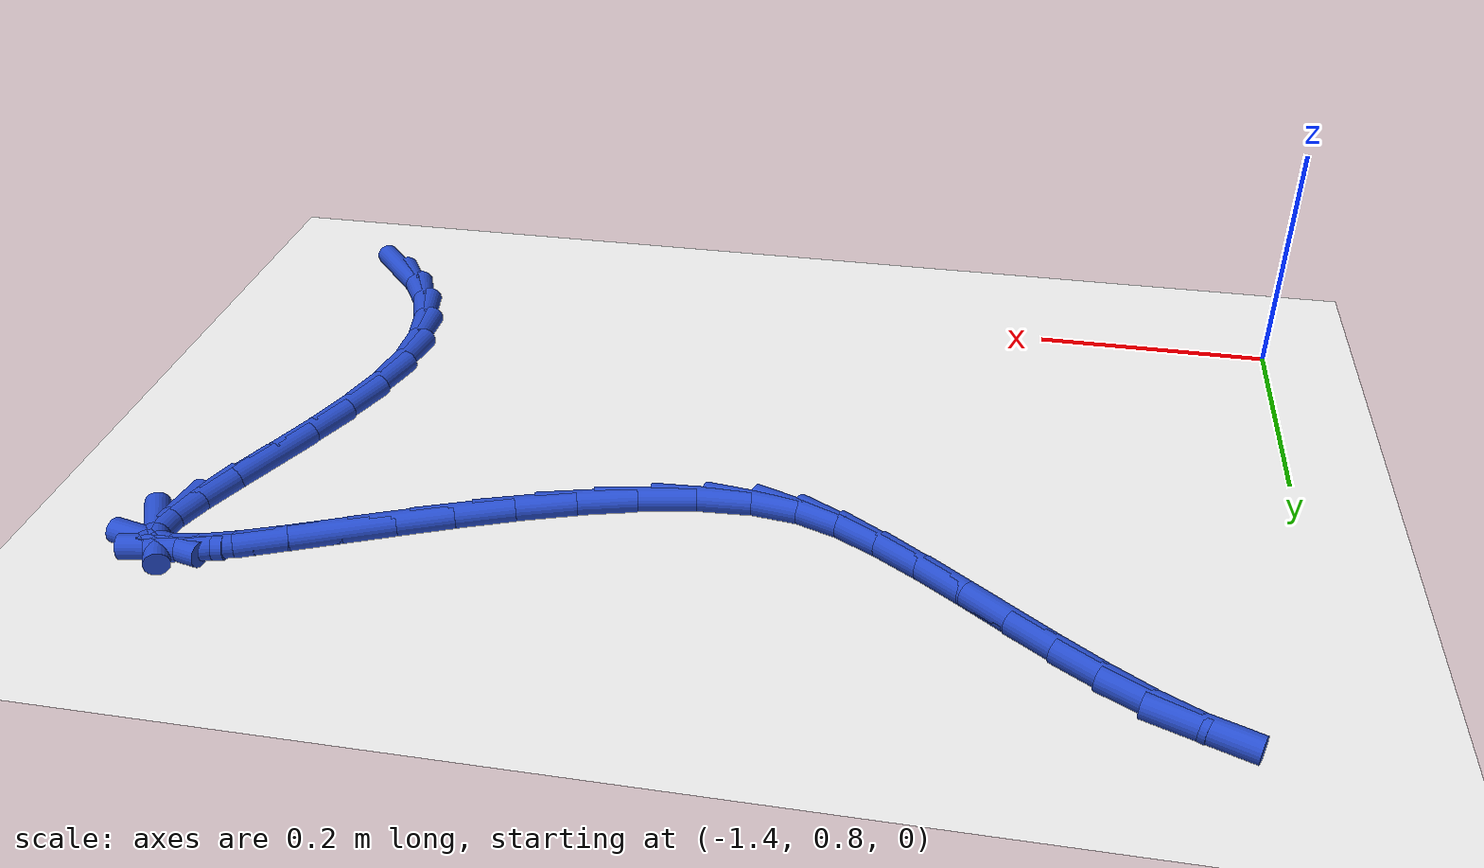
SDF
<sdf version="1.6">
 <world name="default">
  <model name="ground_plane">
   <static>1</static>
   <link name="link">
    <collision name="collision">
     <geometry><plane><normal>0 0 1</normal><size>100 100</size></plane></geometry>
     <surface><friction><ode><mu>100</mu><mu2>50</mu2></ode></friction></surface>
    </collision>
    <visual name="visual">
     <cast_shadows>0</cast_shadows>
     <geometry><plane><normal>0 0 1</normal><size>100 100</size></plane></geometry>
     <material>
      <script><uri>file://media/materials/scripts/gazebo.material</uri><name>Gazebo/WhiteGlow</name></script>
     </material>
    </visual>
   </link>
  </model>
  <model name="line">
   <link name="link_31">
    <pose>-0.5691640479718779 0.7919125182827872 0.01 0 1.57 -0.8287938160876648</pose>
    <collision name="collision">
     <geometry><cylinder><radius>0.01</radius><length>0.08</length></cylinder></geometry>
    </collision>
    <visual name="visual">
     <material>
      <script><name>Gazebo/Blue</name><uri>file://media/materials/scripts/gazebo.material</uri></script>
     </material>
     <geometry><cylinder><radius>0.01</radius><length>0.08</length></cylinder></geometry>
    </visual>
   </link>
   <link name="link_32">
    <pose>-0.5921887021559505 0.8170275373524093 0.01 0 1.57 -1.008055546454614</pose>
    <collision name="collision">
     <geometry><cylinder><radius>0.01</radius><length>0.08</length></cylinder></geometry>
    </collision>
    <visual name="visual">
     <material>
      <script><name>Gazebo/Blue</name><uri>file://media/materials/scripts/gazebo.material</uri></script>
     </material>
     <geometry><cylinder><radius>0.01</radius><length>0.08</length></cylinder></geometry>
    </visual>
   </link>
   <link name="link_33">
    <pose>-0.6106379929205288 0.8462761823557295 0.01 0 1.57 -1.190800888467741</pose>
    <collision name="collision">
     <geometry><cylinder><radius>0.01</radius><length>0.08</length></cylinder></geometry>
    </collision>
    <visual name="visual">
     <material>
      <script><name>Gazebo/Blue</name><uri>file://media/materials/scripts/gazebo.material</uri></script>
     </material>
     <geometry><cylinder><radius>0.01</radius><length>0.08</length></cylinder></geometry>
    </visual>
   </link>
   <link name="link_34">
    <pose>-0.6238168514182505 0.8792722095693919 0.01 0 1.57 -1.3745162825788582</pose>
    <collision name="collision">
     <geometry><cylinder><radius>0.01</radius><length>0.08</length></cylinder></geometry>
    </collision>
    <visual name="visual">
     <material>
      <script><name>Gazebo/Blue</name><uri>file://media/materials/scripts/gazebo.material</uri></script>
     </material>
     <geometry><cylinder><radius>0.01</radius><length>0.08</length></cylinder></geometry>
    </visual>
   </link>
   <link name="link_35">
    <pose>-0.6310119494336793 0.9154575525569977 0.01 0 1.57 -1.5579672254800017</pose>
    <collision name="collision">
     <geometry><cylinder><radius>0.01</radius><length>0.08</length></cylinder></geometry>
    </collision>
    <visual name="visual">
     <material>
      <script><name>Gazebo/Blue</name><uri>file://media/materials/scripts/gazebo.material</uri></script>
     </material>
     <geometry><cylinder><radius>0.01</radius><length>0.08</length></cylinder></geometry>
    </visual>
   </link>
   <link name="link_36">
    <pose>-0.6315099587513782 0.9542741448821481 0.01 0 1.57 1.411901880810581</pose>
    <collision name="collision">
     <geometry><cylinder><radius>0.01</radius><length>0.08</length></cylinder></geometry>
    </collision>
    <visual name="visual">
     <material>
      <script><name>Gazebo/Blue</name><uri>file://media/materials/scripts/gazebo.material</uri></script>
     </material>
     <geometry><cylinder><radius>0.01</radius><length>0.08</length></cylinder></geometry>
    </visual>
   </link>
   <link name="link_37">
    <pose>-0.6249741604738228 0.9950603496126849 0.01 0 1.57 1.2879114870810962</pose>
    <collision name="collision">
     <geometry><cylinder><radius>0.01</radius><length>0.08</length></cylinder></geometry>
    </collision>
    <visual name="visual">
     <material>
      <script><name>Gazebo/Blue</name><uri>file://media/materials/scripts/gazebo.material</uri></script>
     </material>
     <geometry><cylinder><radius>0.01</radius><length>0.08</length></cylinder></geometry>
    </visual>
   </link>
   <link name="link_38">
    <pose>-0.6128833415887832 1.0366552515573897 0.01 0 1.57 1.207531063588702</pose>
    <collision name="collision">
     <geometry><cylinder><radius>0.01</radius><length>0.08</length></cylinder></geometry>
    </collision>
    <visual name="visual">
     <material>
      <script><name>Gazebo/Blue</name><uri>file://media/materials/scripts/gazebo.material</uri></script>
     </material>
     <geometry><cylinder><radius>0.01</radius><length>0.08</length></cylinder></geometry>
    </visual>
   </link>
   <link name="link_39">
    <pose>-0.5972626575549644 1.0777476799399857 0.01 0 1.57 1.1596509893311557</pose>
    <collision name="collision">
     <geometry><cylinder><radius>0.01</radius><length>0.08</length></cylinder></geometry>
    </collision>
    <visual name="visual">
     <material>
      <script><name>Gazebo/Blue</name><uri>file://media/materials/scripts/gazebo.material</uri></script>
     </material>
     <geometry><cylinder><radius>0.01</radius><length>0.08</length></cylinder></geometry>
    </visual>
   </link>
   <link name="link_40">
    <pose>-0.5801373729669529 1.117026433970977 0.01 0 1.57 1.1402550407716003</pose>
    <collision name="collision">
     <geometry><cylinder><radius>0.01</radius><length>0.08</length></cylinder></geometry>
    </collision>
    <visual name="visual">
     <material>
      <script><name>Gazebo/Blue</name><uri>file://media/materials/scripts/gazebo.material</uri></script>
     </material>
     <geometry><cylinder><radius>0.01</radius><length>0.08</length></cylinder></geometry>
    </visual>
   </link>
   <link name="link_41">
    <pose>-0.5635327524193348 1.1531803128608682 0.01 0 1.57 1.1535757710899832</pose>
    <collision name="collision">
     <geometry><cylinder><radius>0.01</radius><length>0.08</length></cylinder></geometry>
    </collision>
    <visual name="visual">
     <material>
      <script><name>Gazebo/Blue</name><uri>file://media/materials/scripts/gazebo.material</uri></script>
     </material>
     <geometry><cylinder><radius>0.01</radius><length>0.08</length></cylinder></geometry>
    </visual>
   </link>
   <link name="link_42">
    <pose>-0.5494740605066963 1.1848981158201646 0.01 0 1.57 1.2205409538286702</pose>
    <collision name="collision">
     <geometry><cylinder><radius>0.01</radius><length>0.08</length></cylinder></geometry>
    </collision>
    <visual name="visual">
     <material>
      <script><name>Gazebo/Blue</name><uri>file://media/materials/scripts/gazebo.material</uri></script>
     </material>
     <geometry><cylinder><radius>0.01</radius><length>0.08</length></cylinder></geometry>
    </visual>
   </link>
   <link name="link_43">
    <pose>-0.5399865618236241 1.2108686420593706 0.01 0 1.57 1.4191029968428943</pose>
    <collision name="collision">
     <geometry><cylinder><radius>0.01</radius><length>0.08</length></cylinder></geometry>
    </collision>
    <visual name="visual">
     <material>
      <script><name>Gazebo/Blue</name><uri>file://media/materials/scripts/gazebo.material</uri></script>
     </material>
     <geometry><cylinder><radius>0.01</radius><length>0.08</length></cylinder></geometry>
    </visual>
   </link>
   <link name="link_44">
    <pose>-0.5370955209647044 1.229780690788992 0.01 0 1.57 -1.0968200849039615</pose>
    <collision name="collision">
     <geometry><cylinder><radius>0.01</radius><length>0.08</length></cylinder></geometry>
    </collision>
    <visual name="visual">
     <material>
      <script><name>Gazebo/Blue</name><uri>file://media/materials/scripts/gazebo.material</uri></script>
     </material>
     <geometry><cylinder><radius>0.01</radius><length>0.08</length></cylinder></geometry>
    </visual>
   </link>
   <link name="link_45">
    <pose>-0.5426006619674212 1.2405124142446236 0.01 0 1.57 -0.2127903457579623</pose>
    <collision name="collision">
     <geometry><cylinder><radius>0.01</radius><length>0.08</length></cylinder></geometry>
    </collision>
    <visual name="visual">
     <material>
      <script><name>Gazebo/Blue</name><uri>file://media/materials/scripts/gazebo.material</uri></script>
     </material>
     <geometry><cylinder><radius>0.01</radius><length>0.08</length></cylinder></geometry>
    </visual>
   </link>
   <link name="link_46">
    <pose>-0.5564422796925125 1.2435030521402366 0.01 0 1.57 0.16556101545826774</pose>
    <collision name="collision">
     <geometry><cylinder><radius>0.01</radius><length>0.08</length></cylinder></geometry>
    </collision>
    <visual name="visual">
     <material>
      <script><name>Gazebo/Blue</name><uri>file://media/materials/scripts/gazebo.material</uri></script>
     </material>
     <geometry><cylinder><radius>0.01</radius><length>0.08</length></cylinder></geometry>
    </visual>
   </link>
   <link name="link_47">
    <pose>-0.5776454709031361 1.2399602005801604 0.01 0 1.57 0.3109083794844831</pose>
    <collision name="collision">
     <geometry><cylinder><radius>0.01</radius><length>0.08</length></cylinder></geometry>
    </collision>
    <visual name="visual">
     <material>
      <script><name>Gazebo/Blue</name><uri>file://media/materials/scripts/gazebo.material</uri></script>
     </material>
     <geometry><cylinder><radius>0.01</radius><length>0.08</length></cylinder></geometry>
    </visual>
   </link>
   <link name="link_48">
    <pose>-0.6052289418680638 1.231096820821046 0.01 0 1.57 0.3746895385349172</pose>
    <collision name="collision">
     <geometry><cylinder><radius>0.01</radius><length>0.08</length></cylinder></geometry>
    </collision>
    <visual name="visual">
     <material>
      <script><name>Gazebo/Blue</name><uri>file://media/materials/scripts/gazebo.material</uri></script>
     </material>
     <geometry><cylinder><radius>0.01</radius><length>0.08</length></cylinder></geometry>
    </visual>
   </link>
   <link name="link_49">
    <pose>-0.6382113988560678 1.2181258741195429 0.01 0 1.57 0.40120211457559063</pose>
    <collision name="collision">
     <geometry><cylinder><radius>0.01</radius><length>0.08</length></cylinder></geometry>
    </collision>
    <visual name="visual">
     <material>
      <script><name>Gazebo/Blue</name><uri>file://media/materials/scripts/gazebo.material</uri></script>
     </material>
     <geometry><cylinder><radius>0.01</radius><length>0.08</length></cylinder></geometry>
    </visual>
   </link>
   <link name="link_50">
    <pose>-0.6756115481359201 1.2022603217323025 0.01 0 1.57 0.4058393092878728</pose>
    <collision name="collision">
     <geometry><cylinder><radius>0.01</radius><length>0.08</length></cylinder></geometry>
    </collision>
    <visual name="visual">
     <material>
      <script><name>Gazebo/Blue</name><uri>file://media/materials/scripts/gazebo.material</uri></script>
     </material>
     <geometry><cylinder><radius>0.01</radius><length>0.08</length></cylinder></geometry>
    </visual>
   </link>
   <link name="link_51">
    <pose>-0.7164480959763923 1.1847131249159755 0.01 0 1.57 0.39435195863110273</pose>
    <collision name="collision">
     <geometry><cylinder><radius>0.01</radius><length>0.08</length></cylinder></geometry>
    </collision>
    <visual name="visual">
     <material>
      <script><name>Gazebo/Blue</name><uri>file://media/materials/scripts/gazebo.material</uri></script>
     </material>
     <geometry><cylinder><radius>0.01</radius><length>0.08</length></cylinder></geometry>
    </visual>
   </link>
   <link name="link_52">
    <pose>-0.7597397486462572 1.1666972449272117 0.01 0 1.57 0.36822649900544446</pose>
    <collision name="collision">
     <geometry><cylinder><radius>0.01</radius><length>0.08</length></cylinder></geometry>
    </collision>
    <visual name="visual">
     <material>
      <script><name>Gazebo/Blue</name><uri>file://media/materials/scripts/gazebo.material</uri></script>
     </material>
     <geometry><cylinder><radius>0.01</radius><length>0.08</length></cylinder></geometry>
    </visual>
   </link>
   <link name="link_53">
    <pose>-0.8045052124142866 1.1494256430226621 0.01 0 1.57 0.3262850010313419</pose>
    <collision name="collision">
     <geometry><cylinder><radius>0.01</radius><length>0.08</length></cylinder></geometry>
    </collision>
    <visual name="visual">
     <material>
      <script><name>Gazebo/Blue</name><uri>file://media/materials/scripts/gazebo.material</uri></script>
     </material>
     <geometry><cylinder><radius>0.01</radius><length>0.08</length></cylinder></geometry>
    </visual>
   </link>
   <link name="link_54">
    <pose>-0.8497631935492521 1.134111280458978 0.01 0 1.57 0.26488725281545655</pose>
    <collision name="collision">
     <geometry><cylinder><radius>0.01</radius><length>0.08</length></cylinder></geometry>
    </collision>
    <visual name="visual">
     <material>
      <script><name>Gazebo/Blue</name><uri>file://media/materials/scripts/gazebo.material</uri></script>
     </material>
     <geometry><cylinder><radius>0.01</radius><length>0.08</length></cylinder></geometry>
    </visual>
   </link>
   <link name="link_55">
    <pose>-0.8945323983199267 1.121967118492809 0.01 0 1.57 0.17735810649386793</pose>
    <collision name="collision">
     <geometry><cylinder><radius>0.01</radius><length>0.08</length></cylinder></geometry>
    </collision>
    <visual name="visual">
     <material>
      <script><name>Gazebo/Blue</name><uri>file://media/materials/scripts/gazebo.material</uri></script>
     </material>
     <geometry><cylinder><radius>0.01</radius><length>0.08</length></cylinder></geometry>
    </visual>
   </link>
   <link name="link_56">
    <pose>-0.9378315329950817 1.1142061183808063 0.01 0 1.57 0.05294911868341523</pose>
    <collision name="collision">
     <geometry><cylinder><radius>0.01</radius><length>0.08</length></cylinder></geometry>
    </collision>
    <visual name="visual">
     <material>
      <script><name>Gazebo/Blue</name><uri>file://media/materials/scripts/gazebo.material</uri></script>
     </material>
     <geometry><cylinder><radius>0.01</radius><length>0.08</length></cylinder></geometry>
    </visual>
   </link>
   <link name="link_57">
    <pose>-0.9786793038434896 1.1120412413796203 0.01 0 1.57 -0.12349484881316836</pose>
    <collision name="collision">
     <geometry><cylinder><radius>0.01</radius><length>0.08</length></cylinder></geometry>
    </collision>
    <visual name="visual">
     <material>
      <script><name>Gazebo/Blue</name><uri>file://media/materials/scripts/gazebo.material</uri></script>
     </material>
     <geometry><cylinder><radius>0.01</radius><length>0.08</length></cylinder></geometry>
    </visual>
   </link>
   <link name="link_58">
    <pose>-1.0160944171339226 1.116685448745902 0.01 0 1.57 -0.3530125301924481</pose>
    <collision name="collision">
     <geometry><cylinder><radius>0.01</radius><length>0.08</length></cylinder></geometry>
    </collision>
    <visual name="visual">
     <material>
      <script><name>Gazebo/Blue</name><uri>file://media/materials/scripts/gazebo.material</uri></script>
     </material>
     <geometry><cylinder><radius>0.01</radius><length>0.08</length></cylinder></geometry>
    </visual>
   </link>
   <link name="link_59">
    <pose>-1.0495161107083162 1.128999544763535 0.01 0 1.57 -0.5089908944474065</pose>
    <collision name="collision">
     <geometry><cylinder><radius>0.01</radius><length>0.08</length></cylinder></geometry>
    </collision>
    <visual name="visual">
     <material>
      <script><name>Gazebo/Blue</name><uri>file://media/materials/scripts/gazebo.material</uri></script>
     </material>
     <geometry><cylinder><radius>0.01</radius><length>0.08</length></cylinder></geometry>
    </visual>
   </link>
   <link name="link_60">
    <pose>-1.0817292713813056 1.1469756038284262 0.01 0 1.57 -0.5780245154650143</pose>
    <collision name="collision">
     <geometry><cylinder><radius>0.01</radius><length>0.08</length></cylinder></geometry>
    </collision>
    <visual name="visual">
     <material>
      <script><name>Gazebo/Blue</name><uri>file://media/materials/scripts/gazebo.material</uri></script>
     </material>
     <geometry><cylinder><radius>0.01</radius><length>0.08</length></cylinder></geometry>
    </visual>
   </link>
   <link name="link_61">
    <pose>-1.114557933021384 1.168391336665698 0.01 0 1.57 -0.6184746304593443</pose>
    <collision name="collision">
     <geometry><cylinder><radius>0.01</radius><length>0.08</length></cylinder></geometry>
    </collision>
    <visual name="visual">
     <material>
      <script><name>Gazebo/Blue</name><uri>file://media/materials/scripts/gazebo.material</uri></script>
     </material>
     <geometry><cylinder><radius>0.01</radius><length>0.08</length></cylinder></geometry>
    </visual>
   </link>
   <link name="link_62">
    <pose>-1.1477237926727404 1.1919924513080438 0.01 0 1.57 -0.6373206061441989</pose>
    <collision name="collision">
     <geometry><cylinder><radius>0.01</radius><length>0.08</length></cylinder></geometry>
    </collision>
    <visual name="visual">
     <material>
      <script><name>Gazebo/Blue</name><uri>file://media/materials/scripts/gazebo.material</uri></script>
     </material>
     <geometry><cylinder><radius>0.01</radius><length>0.08</length></cylinder></geometry>
    </visual>
   </link>
   <link name="link_63">
    <pose>-1.1808928717030829 1.216550419499615 0.01 0 1.57 -0.6367935510681966</pose>
    <collision name="collision">
     <geometry><cylinder><radius>0.01</radius><length>0.08</length></cylinder></geometry>
    </collision>
    <visual name="visual">
     <material>
      <script><name>Gazebo/Blue</name><uri>file://media/materials/scripts/gazebo.material</uri></script>
     </material>
     <geometry><cylinder><radius>0.01</radius><length>0.08</length></cylinder></geometry>
    </visual>
   </link>
   <link name="link_64">
    <pose>-1.2137311914801197 1.2408367129845632 0.01 0 1.57 -0.6162238736106495</pose>
    <collision name="collision">
     <geometry><cylinder><radius>0.01</radius><length>0.08</length></cylinder></geometry>
    </collision>
    <visual name="visual">
     <material>
      <script><name>Gazebo/Blue</name><uri>file://media/materials/scripts/gazebo.material</uri></script>
     </material>
     <geometry><cylinder><radius>0.01</radius><length>0.08</length></cylinder></geometry>
    </visual>
   </link>
   <link name="link_65">
    <pose>-1.2459047733715571 1.263622803507038 0.01 0 1.57 -0.5717090440675521</pose>
    <collision name="collision">
     <geometry><cylinder><radius>0.01</radius><length>0.08</length></cylinder></geometry>
    </collision>
    <visual name="visual">
     <material>
      <script><name>Gazebo/Blue</name><uri>file://media/materials/scripts/gazebo.material</uri></script>
     </material>
     <geometry><cylinder><radius>0.01</radius><length>0.08</length></cylinder></geometry>
    </visual>
   </link>
   <link name="link_66">
    <pose>-1.2770796387451038 1.2836801628111918 0.01 0 1.57 -0.4947525284520675</pose>
    <collision name="collision">
     <geometry><cylinder><radius>0.01</radius><length>0.08</length></cylinder></geometry>
    </collision>
    <visual name="visual">
     <material>
      <script><name>Gazebo/Blue</name><uri>file://media/materials/scripts/gazebo.material</uri></script>
     </material>
     <geometry><cylinder><radius>0.01</radius><length>0.08</length></cylinder></geometry>
    </visual>
   </link>
   <link name="link_67">
    <pose>-1.3069218089684667 1.2997802626411745 0.01 0 1.57 -0.3695703312416977</pose>
    <collision name="collision">
     <geometry><cylinder><radius>0.01</radius><length>0.08</length></cylinder></geometry>
    </collision>
    <visual name="visual">
     <material>
      <script><name>Gazebo/Blue</name><uri>file://media/materials/scripts/gazebo.material</uri></script>
     </material>
     <geometry><cylinder><radius>0.01</radius><length>0.08</length></cylinder></geometry>
    </visual>
   </link>
  </model>
 </world>
</sdf>
